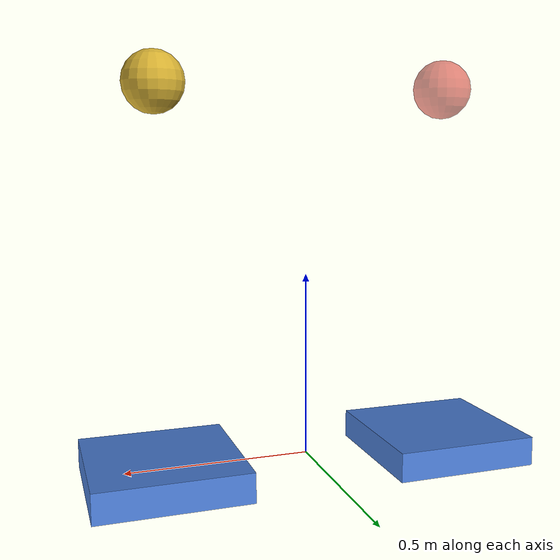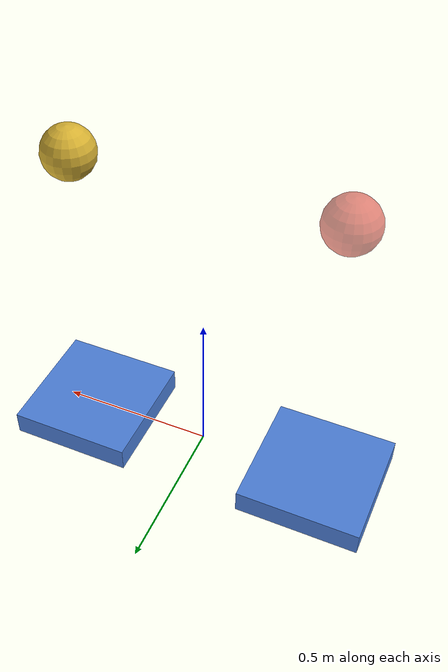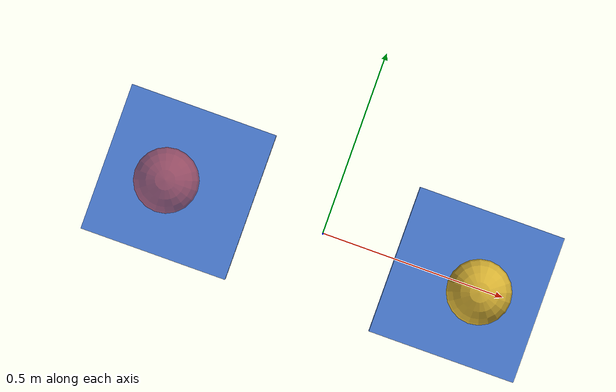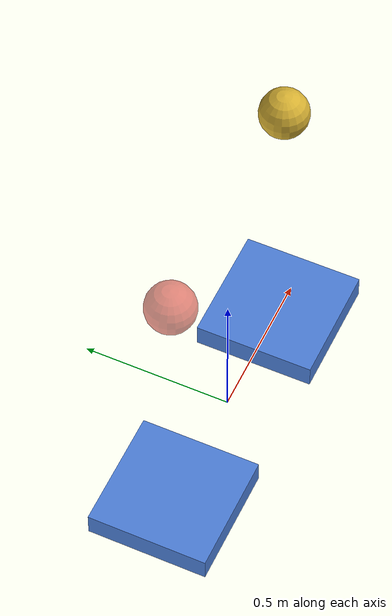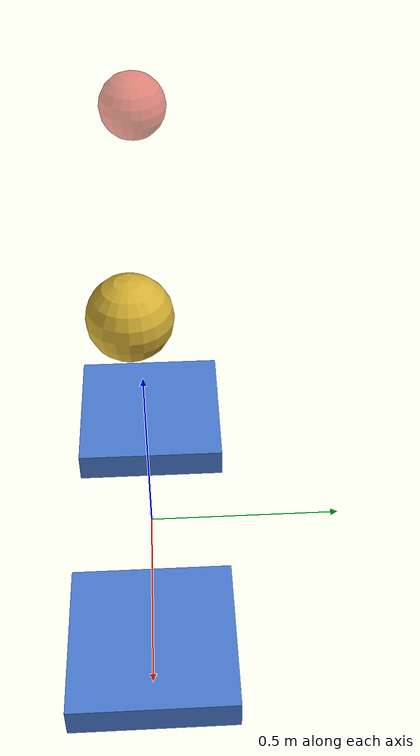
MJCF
<mujoco model="exclude-pairs-demo">
  <compiler angle="radian"/>
  <option gravity="0 0 -2.0" timestep="0.002"/>

  <worldbody>
    <!-- Left platform: mocap (fixed), excluded from left_sphere -->
    <body name="plat_left" mocap="true" pos="-0.4 0 0">
      <geom name="pl_geom" type="box" size="0.2 0.2 0.04" mass="1.0"
            rgba="0.3 0.5 0.85 1"/>
    </body>

    <!-- Right platform: mocap (fixed), NOT excluded -->
    <body name="plat_right" mocap="true" pos="0.4 0 0">
      <geom name="pr_geom" type="box" size="0.2 0.2 0.04" mass="1.0"
            rgba="0.3 0.5 0.85 1"/>
    </body>

    <!-- Left sphere: excluded from left platform -->
    <body name="sphere_excluded" pos="-0.4 0 1.0">
      <freejoint name="ex_free"/>
      <geom name="ex_geom" type="sphere" size="0.08" mass="0.5"
            rgba="0.85 0.25 0.2 0.6"/>
    </body>

    <!-- Right sphere: normal collision with right platform -->
    <body name="sphere_normal" pos="0.4 0 1.0">
      <freejoint name="nm_free"/>
      <geom name="nm_geom" type="sphere" size="0.08" mass="0.5"
            rgba="0.85 0.7 0.2 1"/>
    </body>
  </worldbody>

  <contact>
    <exclude body1="plat_left" body2="sphere_excluded"/>
  </contact>
</mujoco>
